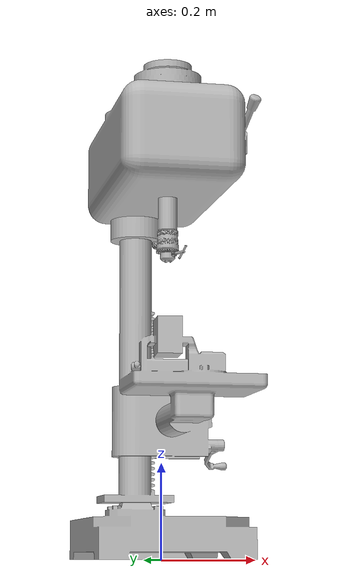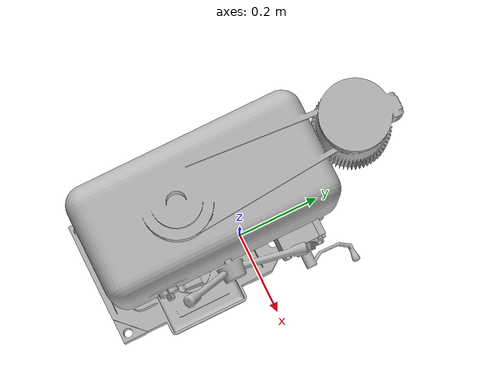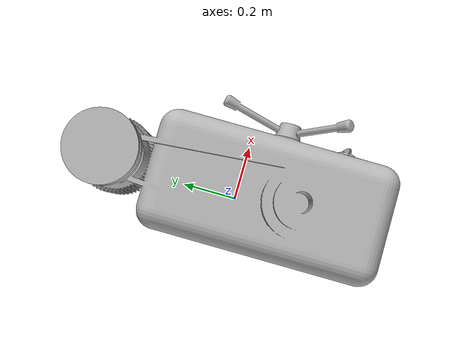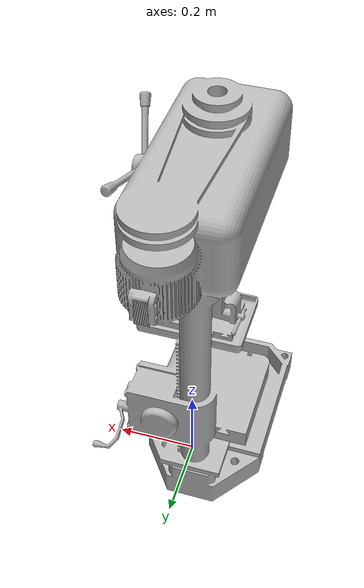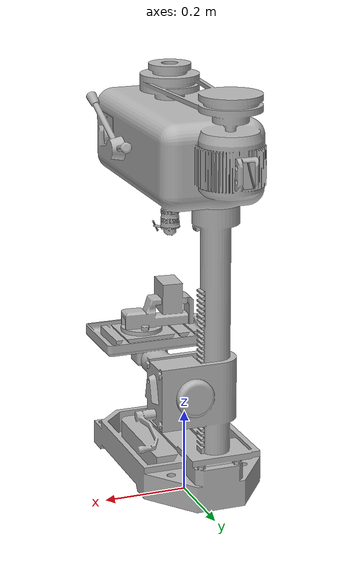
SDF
<?xml version="1.0" ?>
<sdf version="1.5">
  <model name="Furadeira">
    <static>true</static>
    <link name="link">
      <collision name="collision">
        <geometry>
            <mesh>
                <uri>model://furadeira/meshes/furadeira.stl</uri>
                <scale>1 1 1</scale>
            </mesh>
        </geometry>
      </collision>
      <visual name="visual">
        <geometry>
          <mesh>
            <uri>model://furadeira/meshes/furadeira.stl</uri>
            <scale>1 1 1</scale>
          </mesh>
        </geometry>
      </visual>
    </link>
    <gazebo reference="link">
      <material>Gazebo/White</material>
    </gazebo>
  </model>
</sdf>
